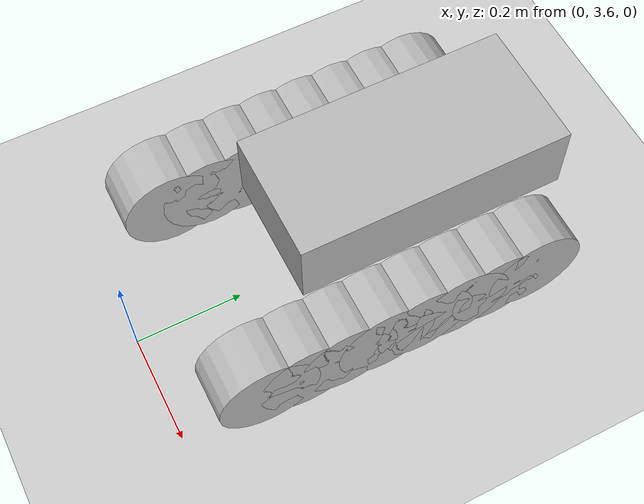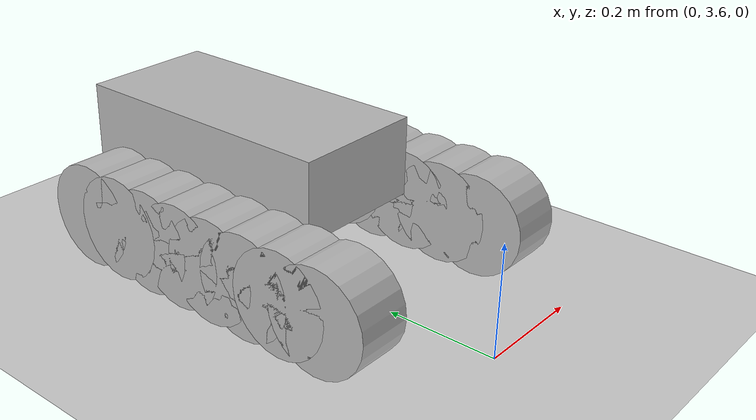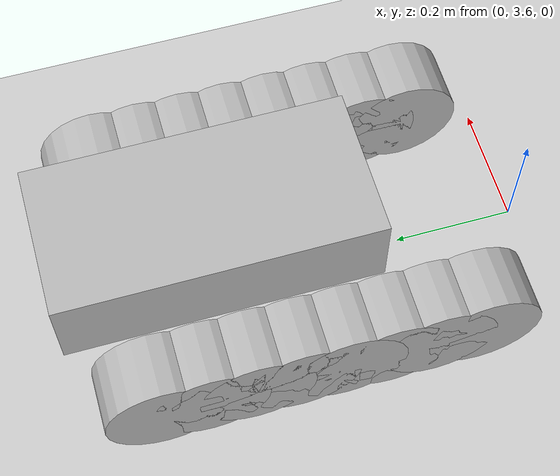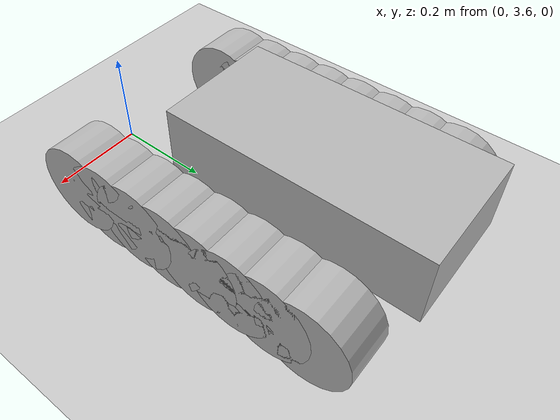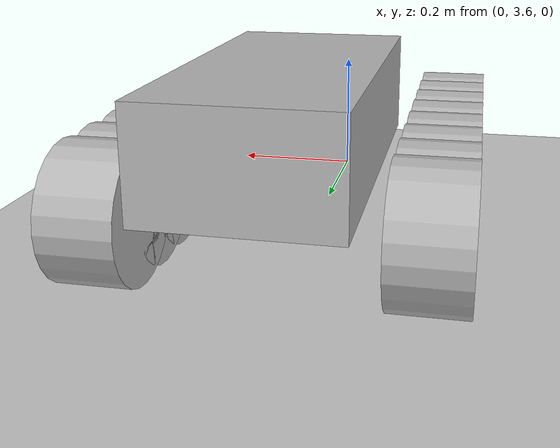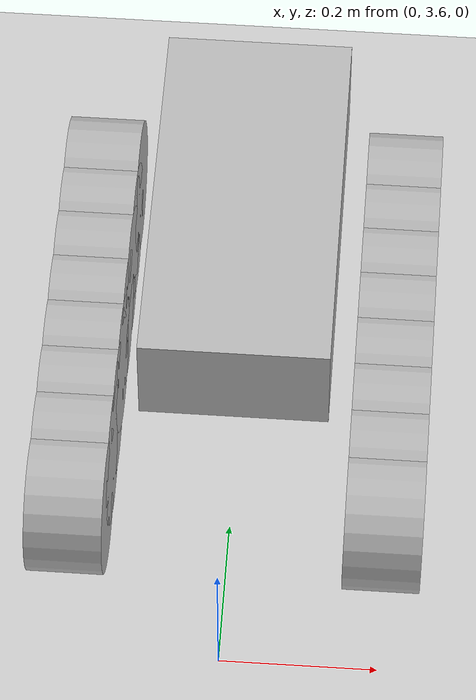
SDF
<?xml version="1.0" ?>
<sdf version="1.6">
    <world name="default">
        <gui>
            <plugin name="keyboard" filename="libKeyboardGUIPlugin.so"/>
        </gui>

        <include>
            <uri>model://sun</uri>
        </include>

        <include>
            <uri>model://ground_plane</uri>
        </include>

        <model name="wheel_tracked">
            <pose frame=''>0 4 0.1 0 0 -1.5708</pose>
            <link name='base_link'>
                <pose frame=''>0 0 0 0 -0 0</pose>
                <inertial>
                    <pose frame=''>-0.122 0 0.118 1.5708 -0 0</pose>
                    <mass>13.14</mass>
                    <inertia>
                        <ixx>0.10019</ixx>
                        <ixy>0</ixy>
                        <ixz>0</ixz>
                        <iyy>0.345043</iyy>
                        <iyz>0</iyz>
                        <izz>0.302044</izz>
                    </inertia>
                </inertial>
                <collision name='base_link_collision'>
                    <pose frame=''>-0.122 0 0.118 0 -0 0</pose>
                    <geometry>
                        <box>
                            <size>0.50017 0.24093 0.139</size>
                        </box>
                    </geometry>
                </collision>
                <visual name='base_link_visual'>
                    <pose frame=''>-0.122 0 0.118 0 -0 0</pose>
                    <geometry>
                        <box>
                            <size>0.50017 0.24093 0.139</size>
                        </box>
                    </geometry>
                </visual>
                <self_collide>0</self_collide>
                <gravity>1</gravity>
                <kinematic>0</kinematic>
            </link>

            <link name='left_track'>
                <pose frame=''>0 0.1985 0 0 -0 0</pose>
                <inertial>
                    <mass>2.06</mass>
                    <inertia>
                        <ixx>0.002731</ixx>
                        <ixy>0</ixy>
                        <ixz>0</ixz>
                        <iyy>0.032554</iyy>
                        <iyz>0</iyz>
                        <izz>0.031391</izz>
                    </inertia>
                </inertial>
                <collision name='left_track_collision'>
                    <pose frame=''>0 0 0.01855 1.5708 -0 1.5708</pose>
                    <geometry>
                        <box>
                            <size>0.009728 0.018094 0.05</size>
                        </box>
                    </geometry>
                    <surface>
                        <friction>
                            <ode>
                                <mu>0.5</mu>
                                <mu2>3.19858</mu2>
                            </ode>
                        </friction>
                        <contact>
                            <collide_bitmask>0</collide_bitmask>
                        </contact>
                    </surface>
                </collision>
            </link>
            <joint name='left_track_j' type='revolute'>
                <child>left_track</child>
                <parent>base_link</parent>
                <axis>
                    <xyz>0 1 0</xyz>
                    <limit>
                        <lower>0</lower>
                        <upper>0</upper>
                        <effort>0</effort>
                        <velocity>4</velocity>
                    </limit>
                    <use_parent_model_frame>1</use_parent_model_frame>
                </axis>
            </joint>
            <link name='left_track_wheel1'>
                <pose frame=''>0.25 0.1985 0.01855 0 -0 0</pose>
                <inertial>
                    <mass>0.5</mass>
                    <inertia>
                        <ixx>0.001</ixx>
                        <ixy>0</ixy>
                        <ixz>0</ixz>
                        <iyy>0.001</iyy>
                        <iyz>0</iyz>
                        <izz>0.001</izz>
                    </inertia>
                </inertial>
                <collision name='left_track_wheel1_collision'>
                    <pose frame=''>0 0 0 1.5708 -0 0</pose>
                    <geometry>
                        <cylinder>
                            <length>0.09728</length>
                            <radius>0.09047</radius>
                        </cylinder>
                    </geometry>
                    <surface>
                        <friction>
                            <ode>
                                <mu>0.5</mu>
                                <mu2>3.19858</mu2>
                            </ode>
                        </friction>
                    </surface>
                </collision>
                <visual name='left_track_wheel1_visual'>
                    <pose frame=''>0 0 0 1.5708 -0 0</pose>
                    <geometry>
                        <cylinder>
                            <length>0.09728</length>
                            <radius>0.09047</radius>
                        </cylinder>
                    </geometry>
                </visual>
            </link>
            <joint name='left_track_wheel1_j' type='revolute'>
                <child>left_track_wheel1</child>
                <parent>left_track</parent>
                <axis>
                    <xyz>0 1 0</xyz>
                    <limit>
                        <lower>-1e+16</lower>
                        <upper>1e+16</upper>
                    </limit>
                    <use_parent_model_frame>1</use_parent_model_frame>
                </axis>
            </joint>
            <link name='left_track_wheel2'>
                <pose frame=''>0.1786 0.1985 0.01855 0 -0 0</pose>
                <inertial>
                    <mass>0.5</mass>
                    <inertia>
                        <ixx>0.001</ixx>
                        <ixy>0</ixy>
                        <ixz>0</ixz>
                        <iyy>0.001</iyy>
                        <iyz>0</iyz>
                        <izz>0.001</izz>
                    </inertia>
                </inertial>
                <collision name='left_track_wheel2_collision'>
                    <pose frame=''>0 0 0 1.5708 -0 0</pose>
                    <geometry>
                        <cylinder>
                            <length>0.09728</length>
                            <radius>0.09047</radius>
                        </cylinder>
                    </geometry>
                    <surface>
                        <friction>
                            <ode>
                                <mu>0.5</mu>
                                <mu2>3.19858</mu2>
                            </ode>
                        </friction>
                    </surface>
                </collision>
                <visual name='left_track_wheel2_visual'>
                    <pose frame=''>0 0 0 1.5708 -0 0</pose>
                    <geometry>
                        <cylinder>
                            <length>0.09728</length>
                            <radius>0.09047</radius>
                        </cylinder>
                    </geometry>
                </visual>
            </link>
            <joint name='left_track_wheel2_j' type='revolute'>
                <child>left_track_wheel2</child>
                <parent>left_track</parent>
                <axis>
                    <xyz>0 1 0</xyz>
                    <limit>
                        <lower>-1e+16</lower>
                        <upper>1e+16</upper>
                    </limit>
                    <use_parent_model_frame>1</use_parent_model_frame>
                </axis>
            </joint>
            <link name='left_track_wheel3'>
                <pose frame=''>0.1072 0.1985 0.01855 0 -0 0</pose>
                <inertial>
                    <mass>0.5</mass>
                    <inertia>
                        <ixx>0.001</ixx>
                        <ixy>0</ixy>
                        <ixz>0</ixz>
                        <iyy>0.001</iyy>
                        <iyz>0</iyz>
                        <izz>0.001</izz>
                    </inertia>
                </inertial>
                <collision name='left_track_wheel3_collision'>
                    <pose frame=''>0 0 0 1.5708 -0 0</pose>
                    <geometry>
                        <cylinder>
                            <length>0.09728</length>
                            <radius>0.09047</radius>
                        </cylinder>
                    </geometry>
                    <surface>
                        <friction>
                            <ode>
                                <mu>0.5</mu>
                                <mu2>3.19858</mu2>
                            </ode>
                        </friction>
                    </surface>
                </collision>
                <visual name='left_track_wheel3_visual'>
                    <pose frame=''>0 0 0 1.5708 -0 0</pose>
                    <geometry>
                        <cylinder>
                            <length>0.09728</length>
                            <radius>0.09047</radius>
                        </cylinder>
                    </geometry>
                </visual>
            </link>
            <joint name='left_track_wheel3_j' type='revolute'>
                <child>left_track_wheel3</child>
                <parent>left_track</parent>
                <axis>
                    <xyz>0 1 0</xyz>
                    <limit>
                        <lower>-1e+16</lower>
                        <upper>1e+16</upper>
                    </limit>
                    <use_parent_model_frame>1</use_parent_model_frame>
                </axis>
            </joint>
            <link name='left_track_wheel4'>
                <pose frame=''>-0.25 0.1985 0.01855 0 -0 0</pose>
                <inertial>
                    <mass>0.5</mass>
                    <inertia>
                        <ixx>0.001</ixx>
                        <ixy>0</ixy>
                        <ixz>0</ixz>
                        <iyy>0.001</iyy>
                        <iyz>0</iyz>
                        <izz>0.001</izz>
                    </inertia>
                </inertial>
                <collision name='left_track_wheel4_collision'>
                    <pose frame=''>0 0 0 1.5708 -0 0</pose>
                    <geometry>
                        <cylinder>
                            <length>0.09728</length>
                            <radius>0.09047</radius>
                        </cylinder>
                    </geometry>
                    <surface>
                        <friction>
                            <ode>
                                <mu>0.5</mu>
                                <mu2>3.19858</mu2>
                            </ode>
                        </friction>
                    </surface>
                </collision>
                <visual name='left_track_wheel4_visual'>
                    <pose frame=''>0 0 0 1.5708 -0 0</pose>
                    <geometry>
                        <cylinder>
                            <length>0.09728</length>
                            <radius>0.09047</radius>
                        </cylinder>
                    </geometry>
                </visual>
            </link>
            <joint name='left_track_wheel4_j' type='revolute'>
                <child>left_track_wheel4</child>
                <parent>left_track</parent>
                <axis>
                    <xyz>0 1 0</xyz>
                    <limit>
                        <lower>-1e+16</lower>
                        <upper>1e+16</upper>
                    </limit>
                    <use_parent_model_frame>1</use_parent_model_frame>
                </axis>
            </joint>
            <link name='left_track_wheel5'>
                <pose frame=''>-0.0358 0.1985 0.01855 0 -0 0</pose>
                <inertial>
                    <mass>0.5</mass>
                    <inertia>
                        <ixx>0.001</ixx>
                        <ixy>0</ixy>
                        <ixz>0</ixz>
                        <iyy>0.001</iyy>
                        <iyz>0</iyz>
                        <izz>0.001</izz>
                    </inertia>
                </inertial>
                <collision name='left_track_wheel5_collision'>
                    <pose frame=''>0 0 0 1.5708 -0 0</pose>
                    <geometry>
                        <cylinder>
                            <length>0.09728</length>
                            <radius>0.09047</radius>
                        </cylinder>
                    </geometry>
                    <surface>
                        <friction>
                            <ode>
                                <mu>0.5</mu>
                                <mu2>3.19858</mu2>
                            </ode>
                        </friction>
                    </surface>
                </collision>
                <visual name='left_track_wheel5_visual'>
                    <pose frame=''>0 0 0 1.5708 -0 0</pose>
                    <geometry>
                        <cylinder>
                            <length>0.09728</length>
                            <radius>0.09047</radius>
                        </cylinder>
                    </geometry>
                </visual>
            </link>
            <joint name='left_track_wheel5_j' type='revolute'>
                <child>left_track_wheel5</child>
                <parent>left_track</parent>
                <axis>
                    <xyz>0 1 0</xyz>
                    <limit>
                        <lower>-1e+16</lower>
                        <upper>1e+16</upper>
                    </limit>
                    <use_parent_model_frame>1</use_parent_model_frame>
                </axis>
            </joint>
            <link name='left_track_wheel6'>
                <pose frame=''>-0.1072 0.1985 0.01855 0 -0 0</pose>
                <inertial>
                    <mass>0.5</mass>
                    <inertia>
                        <ixx>0.001</ixx>
                        <ixy>0</ixy>
                        <ixz>0</ixz>
                        <iyy>0.001</iyy>
                        <iyz>0</iyz>
                        <izz>0.001</izz>
                    </inertia>
                </inertial>
                <collision name='left_track_wheel6_collision'>
                    <pose frame=''>0 0 0 1.5708 -0 0</pose>
                    <geometry>
                        <cylinder>
                            <length>0.09728</length>
                            <radius>0.09047</radius>
                        </cylinder>
                    </geometry>
                    <surface>
                        <friction>
                            <ode>
                                <mu>0.5</mu>
                                <mu2>3.19858</mu2>
                            </ode>
                        </friction>
                    </surface>
                </collision>
                <visual name='left_track_wheel6_visual'>
                    <pose frame=''>0 0 0 1.5708 -0 0</pose>
                    <geometry>
                        <cylinder>
                            <length>0.09728</length>
                            <radius>0.09047</radius>
                        </cylinder>
                    </geometry>
                </visual>
                <gravity>1</gravity>
                <velocity_decay/>
                <kinematic>0</kinematic>
            </link>
            <joint name='left_track_wheel6_j' type='revolute'>
                <child>left_track_wheel6</child>
                <parent>left_track</parent>
                <axis>
                    <xyz>0 1 0</xyz>
                    <limit>
                        <lower>-1e+16</lower>
                        <upper>1e+16</upper>
                    </limit>
                    <use_parent_model_frame>1</use_parent_model_frame>
                </axis>
            </joint>
            <link name='left_track_wheel7'>
                <pose frame=''>-0.1786 0.1985 0.01855 0 -0 0</pose>
                <inertial>
                    <mass>0.5</mass>
                    <inertia>
                        <ixx>0.001</ixx>
                        <ixy>0</ixy>
                        <ixz>0</ixz>
                        <iyy>0.001</iyy>
                        <iyz>0</iyz>
                        <izz>0.001</izz>
                    </inertia>
                </inertial>
                <collision name='left_track_wheel7_collision'>
                    <pose frame=''>0 0 0 1.5708 -0 0</pose>
                    <geometry>
                        <cylinder>
                            <length>0.09728</length>
                            <radius>0.09047</radius>
                        </cylinder>
                    </geometry>
                    <surface>
                        <friction>
                            <ode>
                                <mu>0.5</mu>
                                <mu2>3.19858</mu2>
                            </ode>
                        </friction>
                    </surface>
                </collision>
                <visual name='left_track_wheel7_visual'>
                    <pose frame=''>0 0 0 1.5708 -0 0</pose>
                    <geometry>
                        <cylinder>
                            <length>0.09728</length>
                            <radius>0.09047</radius>
                        </cylinder>
                    </geometry>
                </visual>
            </link>
            <joint name='left_track_wheel7_j' type='revolute'>
                <child>left_track_wheel7</child>
                <parent>left_track</parent>
                <axis>
                    <xyz>0 1 0</xyz>
                    <limit>
                        <lower>-1e+16</lower>
                        <upper>1e+16</upper>
                    </limit>
                    <use_parent_model_frame>1</use_parent_model_frame>
                </axis>
            </joint>
            <link name='left_track_wheel8'>
                <pose frame=''>0.0358 0.1985 0.01855 0 -0 0</pose>
                <inertial>
                    <mass>0.5</mass>
                    <inertia>
                        <ixx>0.001</ixx>
                        <ixy>0</ixy>
                        <ixz>0</ixz>
                        <iyy>0.001</iyy>
                        <iyz>0</iyz>
                        <izz>0.001</izz>
                    </inertia>
                </inertial>
                <collision name='left_track_wheel8_collision'>
                    <pose frame=''>0 0 0 1.5708 -0 0</pose>
                    <geometry>
                        <cylinder>
                            <length>0.09728</length>
                            <radius>0.09047</radius>
                        </cylinder>
                    </geometry>
                    <surface>
                        <friction>
                            <ode>
                                <mu>0.5</mu>
                                <mu2>3.19858</mu2>
                            </ode>
                        </friction>
                    </surface>
                </collision>
                <visual name='left_track_wheel8_visual'>
                    <pose frame=''>0 0 0 1.5708 -0 0</pose>
                    <geometry>
                        <cylinder>
                            <length>0.09728</length>
                            <radius>0.09047</radius>
                        </cylinder>
                    </geometry>
                </visual>
            </link>
            <joint name='left_track_wheel8_j' type='revolute'>
                <child>left_track_wheel8</child>
                <parent>left_track</parent>
                <axis>
                    <xyz>0 1 0</xyz>
                    <limit>
                        <lower>-1e+16</lower>
                        <upper>1e+16</upper>
                    </limit>
                    <use_parent_model_frame>1</use_parent_model_frame>
                </axis>
            </joint>

            <link name='right_track'>
                <pose frame=''>0 -0.1985 0 0 -0 0</pose>
                <inertial>
                    <mass>2.06</mass>
                    <inertia>
                        <ixx>0.002731</ixx>
                        <ixy>0</ixy>
                        <ixz>0</ixz>
                        <iyy>0.032554</iyy>
                        <iyz>0</iyz>
                        <izz>0.031391</izz>
                    </inertia>
                </inertial>
                <collision name='right_track_collision'>
                    <pose frame=''>0 0 0.01855 1.5708 -0 1.5708</pose>
                    <geometry>
                        <box>
                            <size>0.009728 0.018094 0.05</size>
                        </box>
                    </geometry>
                    <surface>
                        <friction>
                            <ode>
                                <mu>0.5</mu>
                                <mu2>3.19858</mu2>
                            </ode>
                        </friction>
                        <contact>
                            <collide_bitmask>0</collide_bitmask>
                        </contact>
                    </surface>
                </collision>
            </link>
            <joint name='right_track_j' type='revolute'>
                <child>right_track</child>
                <parent>base_link</parent>
                <axis>
                    <xyz>0 1 0</xyz>
                    <limit>
                        <lower>0</lower>
                        <upper>0</upper>
                        <effort>0</effort>
                        <velocity>4</velocity>
                    </limit>
                    <use_parent_model_frame>1</use_parent_model_frame>
                </axis>
            </joint>

            <link name='right_track_wheel1'>
                <pose frame=''>0.25 -0.1985 0.01855 0 -0 0</pose>
                <inertial>
                    <mass>0.5</mass>
                    <inertia>
                        <ixx>0.001</ixx>
                        <ixy>0</ixy>
                        <ixz>0</ixz>
                        <iyy>0.001</iyy>
                        <iyz>0</iyz>
                        <izz>0.001</izz>
                    </inertia>
                </inertial>
                <collision name='right_track_wheel1_collision'>
                    <pose frame=''>0 0 0 1.5708 -0 0</pose>
                    <geometry>
                        <cylinder>
                            <length>0.09728</length>
                            <radius>0.09047</radius>
                        </cylinder>
                    </geometry>
                    <surface>
                        <friction>
                            <ode>
                                <mu>0.5</mu>
                                <mu2>3.19858</mu2>
                            </ode>
                        </friction>
                    </surface>
                </collision>
                <visual name='right_track_wheel1_visual'>
                    <pose frame=''>0 0 0 1.5708 -0 0</pose>
                    <geometry>
                        <cylinder>
                            <length>0.09728</length>
                            <radius>0.09047</radius>
                        </cylinder>
                    </geometry>
                </visual>
            </link>
            <joint name='right_track_wheel1_j' type='revolute'>
                <child>right_track_wheel1</child>
                <parent>right_track</parent>
                <axis>
                    <xyz>0 1 0</xyz>
                    <limit>
                        <lower>-1e+16</lower>
                        <upper>1e+16</upper>
                    </limit>
                    <use_parent_model_frame>1</use_parent_model_frame>
                </axis>
            </joint>
            <link name='right_track_wheel2'>
                <pose frame=''>0.1786 -0.1985 0.01855 0 -0 0</pose>
                <inertial>
                    <mass>0.5</mass>
                    <inertia>
                        <ixx>0.001</ixx>
                        <ixy>0</ixy>
                        <ixz>0</ixz>
                        <iyy>0.001</iyy>
                        <iyz>0</iyz>
                        <izz>0.001</izz>
                    </inertia>
                </inertial>
                <collision name='right_track_wheel2_collision'>
                    <pose frame=''>0 0 0 1.5708 -0 0</pose>
                    <geometry>
                        <cylinder>
                            <length>0.09728</length>
                            <radius>0.09047</radius>
                        </cylinder>
                    </geometry>
                    <surface>
                        <friction>
                            <ode>
                                <mu>0.5</mu>
                                <mu2>3.19858</mu2>
                            </ode>
                        </friction>
                    </surface>
                </collision>
                <visual name='right_track_wheel2_visual'>
                    <pose frame=''>0 0 0 1.5708 -0 0</pose>
                    <geometry>
                        <cylinder>
                            <length>0.09728</length>
                            <radius>0.09047</radius>
                        </cylinder>
                    </geometry>
                </visual>
            </link>
            <joint name='right_track_wheel2_j' type='revolute'>
                <child>right_track_wheel2</child>
                <parent>right_track</parent>
                <axis>
                    <xyz>0 1 0</xyz>
                    <limit>
                        <lower>-1e+16</lower>
                        <upper>1e+16</upper>
                    </limit>
                    <use_parent_model_frame>1</use_parent_model_frame>
                </axis>
            </joint>
            <link name='right_track_wheel3'>
                <pose frame=''>0.1072 -0.1985 0.01855 0 -0 0</pose>
                <inertial>
                    <mass>0.5</mass>
                    <inertia>
                        <ixx>0.001</ixx>
                        <ixy>0</ixy>
                        <ixz>0</ixz>
                        <iyy>0.001</iyy>
                        <iyz>0</iyz>
                        <izz>0.001</izz>
                    </inertia>
                </inertial>
                <collision name='right_track_wheel3_collision'>
                    <pose frame=''>0 0 0 1.5708 -0 0</pose>
                    <geometry>
                        <cylinder>
                            <length>0.09728</length>
                            <radius>0.09047</radius>
                        </cylinder>
                    </geometry>
                    <surface>
                        <friction>
                            <ode>
                                <mu>0.5</mu>
                                <mu2>3.19858</mu2>
                            </ode>
                        </friction>
                    </surface>
                </collision>
                <visual name='right_track_wheel3_visual'>
                    <pose frame=''>0 0 0 1.5708 -0 0</pose>
                    <geometry>
                        <cylinder>
                            <length>0.09728</length>
                            <radius>0.09047</radius>
                        </cylinder>
                    </geometry>
                </visual>
            </link>
            <joint name='right_track_wheel3_j' type='revolute'>
                <child>right_track_wheel3</child>
                <parent>right_track</parent>
                <axis>
                    <xyz>0 1 0</xyz>
                    <limit>
                        <lower>-1e+16</lower>
                        <upper>1e+16</upper>
                    </limit>
                    <use_parent_model_frame>1</use_parent_model_frame>
                </axis>
            </joint>
            <link name='right_track_wheel4'>
                <pose frame=''>-0.25 -0.1985 0.01855 0 -0 0</pose>
                <inertial>
                    <mass>0.5</mass>
                    <inertia>
                        <ixx>0.001</ixx>
                        <ixy>0</ixy>
                        <ixz>0</ixz>
                        <iyy>0.001</iyy>
                        <iyz>0</iyz>
                        <izz>0.001</izz>
                    </inertia>
                </inertial>
                <collision name='right_track_wheel4_collision'>
                    <pose frame=''>0 0 0 1.5708 -0 0</pose>
                    <geometry>
                        <cylinder>
                            <length>0.09728</length>
                            <radius>0.09047</radius>
                        </cylinder>
                    </geometry>
                    <surface>
                        <friction>
                            <ode>
                                <mu>0.5</mu>
                                <mu2>3.19858</mu2>
                            </ode>
                        </friction>
                    </surface>
                </collision>
                <visual name='right_track_wheel4_visual'>
                    <pose frame=''>0 0 0 1.5708 -0 0</pose>
                    <geometry>
                        <cylinder>
                            <length>0.09728</length>
                            <radius>0.09047</radius>
                        </cylinder>
                    </geometry>
                </visual>
            </link>
            <joint name='right_track_wheel4_j' type='revolute'>
                <child>right_track_wheel4</child>
                <parent>right_track</parent>
                <axis>
                    <xyz>0 1 0</xyz>
                    <limit>
                        <lower>-1e+16</lower>
                        <upper>1e+16</upper>
                    </limit>
                    <use_parent_model_frame>1</use_parent_model_frame>
                </axis>
            </joint>
            <link name='right_track_wheel5'>
                <pose frame=''>-0.0358 -0.1985 0.01855 0 -0 0</pose>
                <inertial>
                    <mass>0.5</mass>
                    <inertia>
                        <ixx>0.001</ixx>
                        <ixy>0</ixy>
                        <ixz>0</ixz>
                        <iyy>0.001</iyy>
                        <iyz>0</iyz>
                        <izz>0.001</izz>
                    </inertia>
                </inertial>
                <collision name='right_track_wheel5_collision'>
                    <pose frame=''>0 0 0 1.5708 -0 0</pose>
                    <geometry>
                        <cylinder>
                            <length>0.09728</length>
                            <radius>0.09047</radius>
                        </cylinder>
                    </geometry>
                    <surface>
                        <friction>
                            <ode>
                                <mu>0.5</mu>
                                <mu2>3.19858</mu2>
                            </ode>
                        </friction>
                    </surface>
                </collision>
                <visual name='right_track_wheel5_visual'>
                    <pose frame=''>0 0 0 1.5708 -0 0</pose>
                    <geometry>
                        <cylinder>
                            <length>0.09728</length>
                            <radius>0.09047</radius>
                        </cylinder>
                    </geometry>
                </visual>
            </link>
            <joint name='right_track_wheel5_j' type='revolute'>
                <child>right_track_wheel5</child>
                <parent>right_track</parent>
                <axis>
                    <xyz>0 1 0</xyz>
                    <limit>
                        <lower>-1e+16</lower>
                        <upper>1e+16</upper>
                    </limit>
                    <use_parent_model_frame>1</use_parent_model_frame>
                </axis>
            </joint>
            <link name='right_track_wheel6'>
                <pose frame=''>-0.1072 -0.1985 0.01855 0 -0 0</pose>
                <inertial>
                    <mass>0.5</mass>
                    <inertia>
                        <ixx>0.001</ixx>
                        <ixy>0</ixy>
                        <ixz>0</ixz>
                        <iyy>0.001</iyy>
                        <iyz>0</iyz>
                        <izz>0.001</izz>
                    </inertia>
                </inertial>
                <collision name='right_track_wheel6_collision'>
                    <pose frame=''>0 0 0 1.5708 -0 0</pose>
                    <geometry>
                        <cylinder>
                            <length>0.09728</length>
                            <radius>0.09047</radius>
                        </cylinder>
                    </geometry>
                    <surface>
                        <friction>
                            <ode>
                                <mu>0.5</mu>
                                <mu2>3.19858</mu2>
                            </ode>
                        </friction>
                    </surface>
                </collision>
                <visual name='right_track_wheel6_visual'>
                    <pose frame=''>0 0 0 1.5708 -0 0</pose>
                    <geometry>
                        <cylinder>
                            <length>0.09728</length>
                            <radius>0.09047</radius>
                        </cylinder>
                    </geometry>
                </visual>
            </link>
            <joint name='right_track_wheel6_j' type='revolute'>
                <child>right_track_wheel6</child>
                <parent>right_track</parent>
                <axis>
                    <xyz>0 1 0</xyz>
                    <limit>
                        <lower>-1e+16</lower>
                        <upper>1e+16</upper>
                    </limit>
                    <use_parent_model_frame>1</use_parent_model_frame>
                </axis>
            </joint>
            <link name='right_track_wheel7'>
                <pose frame=''>-0.1786 -0.1985 0.01855 0 -0 0</pose>
                <inertial>
                    <mass>0.5</mass>
                    <inertia>
                        <ixx>0.001</ixx>
                        <ixy>0</ixy>
                        <ixz>0</ixz>
                        <iyy>0.001</iyy>
                        <iyz>0</iyz>
                        <izz>0.001</izz>
                    </inertia>
                </inertial>
                <collision name='right_track_wheel7_collision'>
                    <pose frame=''>0 0 0 1.5708 -0 0</pose>
                    <geometry>
                        <cylinder>
                            <length>0.09728</length>
                            <radius>0.09047</radius>
                        </cylinder>
                    </geometry>
                    <surface>
                        <friction>
                            <ode>
                                <mu>0.5</mu>
                                <mu2>3.19858</mu2>
                            </ode>
                        </friction>
                    </surface>
                </collision>
                <visual name='right_track_wheel7_visual'>
                    <pose frame=''>0 0 0 1.5708 -0 0</pose>
                    <geometry>
                        <cylinder>
                            <length>0.09728</length>
                            <radius>0.09047</radius>
                        </cylinder>
                    </geometry>
                </visual>
            </link>
            <joint name='right_track_wheel7_j' type='revolute'>
                <child>right_track_wheel7</child>
                <parent>right_track</parent>
                <axis>
                    <xyz>0 1 0</xyz>
                    <limit>
                        <lower>-1e+16</lower>
                        <upper>1e+16</upper>
                    </limit>
                    <use_parent_model_frame>1</use_parent_model_frame>
                </axis>
            </joint>
            <link name='right_track_wheel8'>
                <pose frame=''>0.0358 -0.1985 0.01855 0 -0 0</pose>
                <inertial>
                    <mass>0.5</mass>
                    <inertia>
                        <ixx>0.001</ixx>
                        <ixy>0</ixy>
                        <ixz>0</ixz>
                        <iyy>0.001</iyy>
                        <iyz>0</iyz>
                        <izz>0.001</izz>
                    </inertia>
                </inertial>
                <collision name='right_track_wheel8_collision'>
                    <pose frame=''>0 0 0 1.5708 -0 0</pose>
                    <geometry>
                        <cylinder>
                            <length>0.09728</length>
                            <radius>0.09047</radius>
                        </cylinder>
                    </geometry>
                    <surface>
                        <friction>
                            <ode>
                                <mu>0.5</mu>
                                <mu2>3.19858</mu2>
                            </ode>
                        </friction>
                    </surface>
                </collision>
                <visual name='right_track_wheel8_visual'>
                    <pose frame=''>0 0 0 1.5708 -0 0</pose>
                    <geometry>
                        <cylinder>
                            <length>0.09728</length>
                            <radius>0.09047</radius>
                        </cylinder>
                    </geometry>
                </visual>
            </link>
            <joint name='right_track_wheel8_j' type='revolute'>
                <child>right_track_wheel8</child>
                <parent>right_track</parent>
                <axis>
                    <xyz>0 1 0</xyz>
                    <limit>
                        <lower>-1e+16</lower>
                        <upper>1e+16</upper>
                    </limit>
                    <use_parent_model_frame>1</use_parent_model_frame>
                </axis>
            </joint>
        </model>
    </world>
</sdf>
